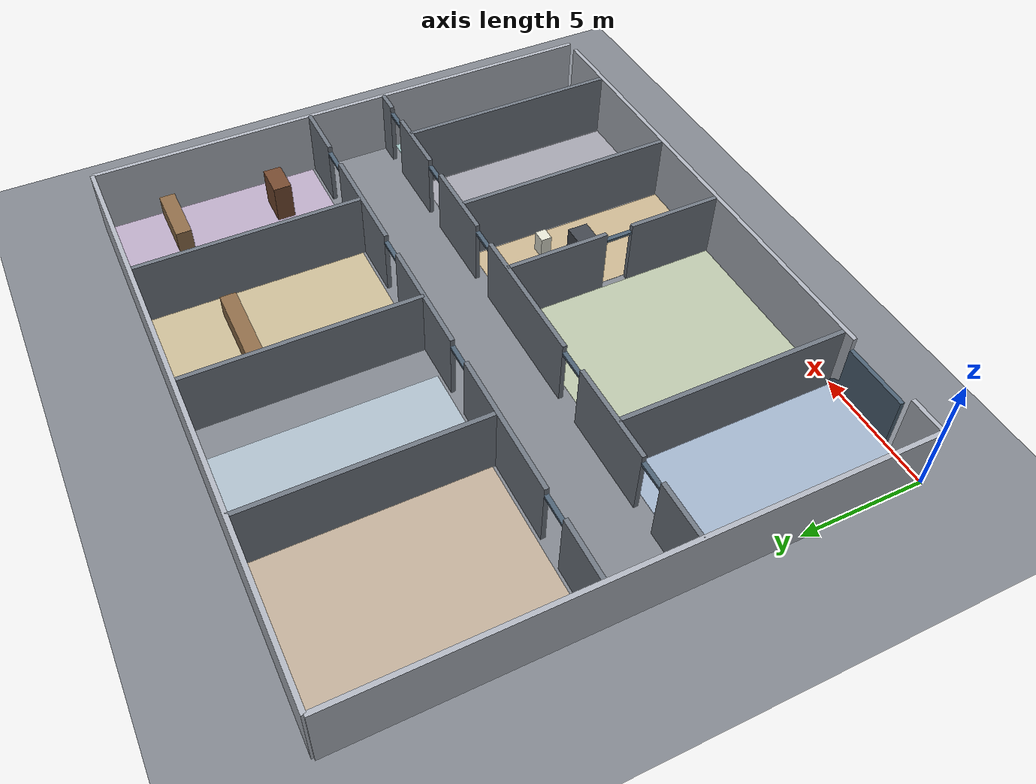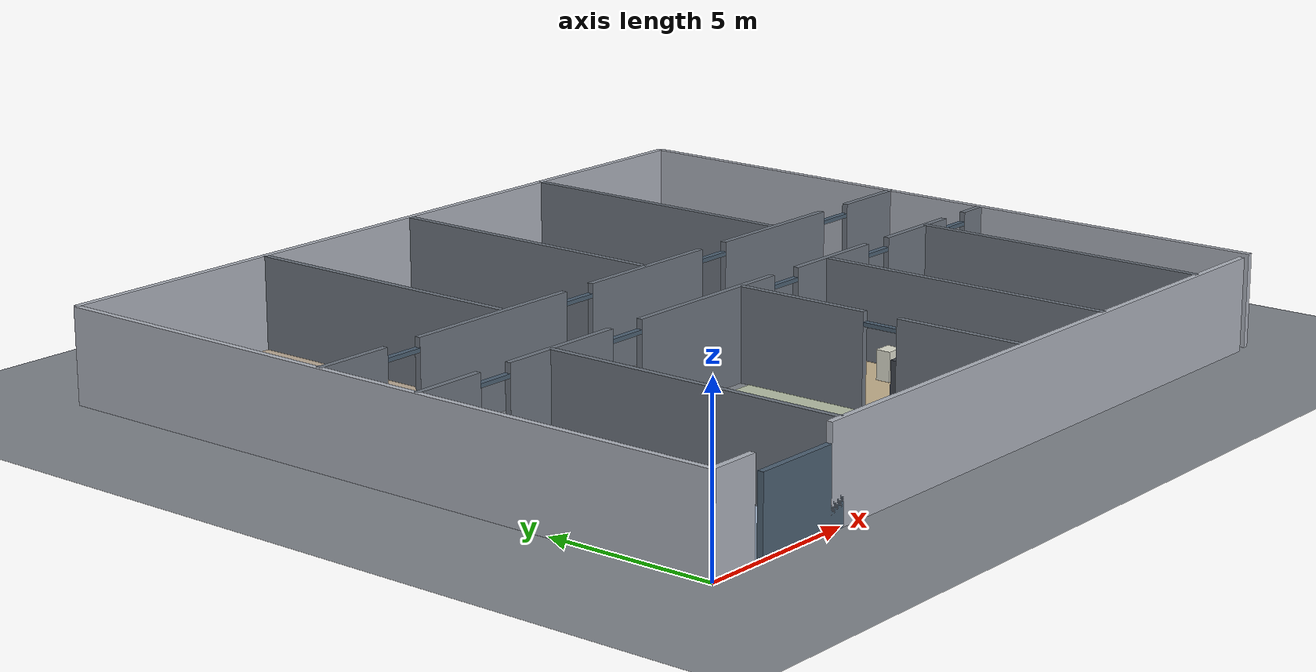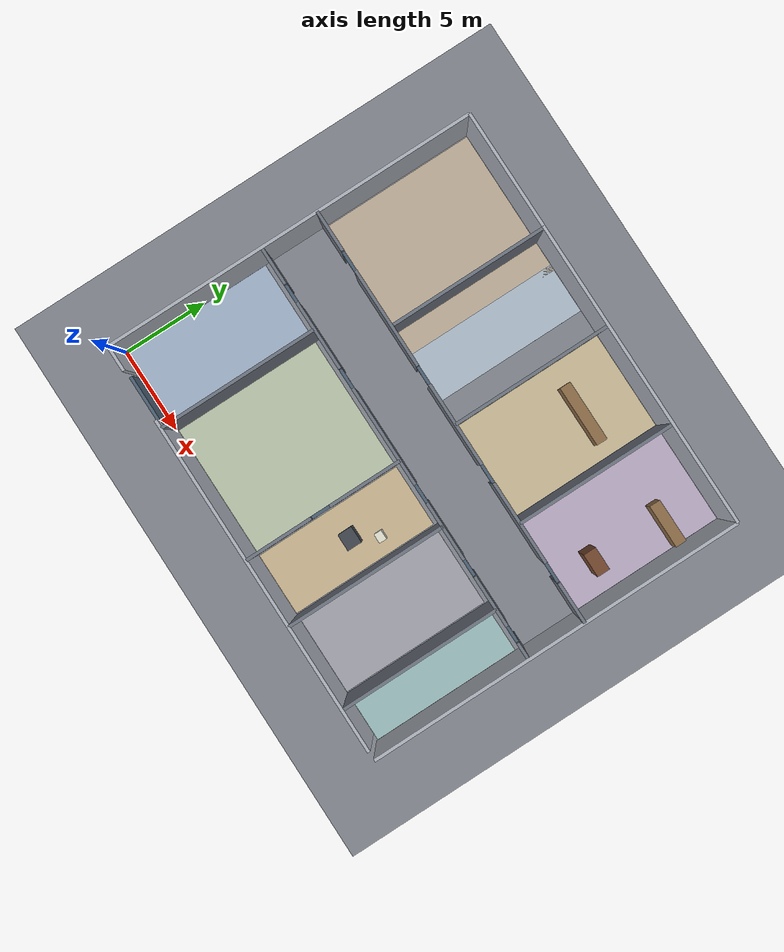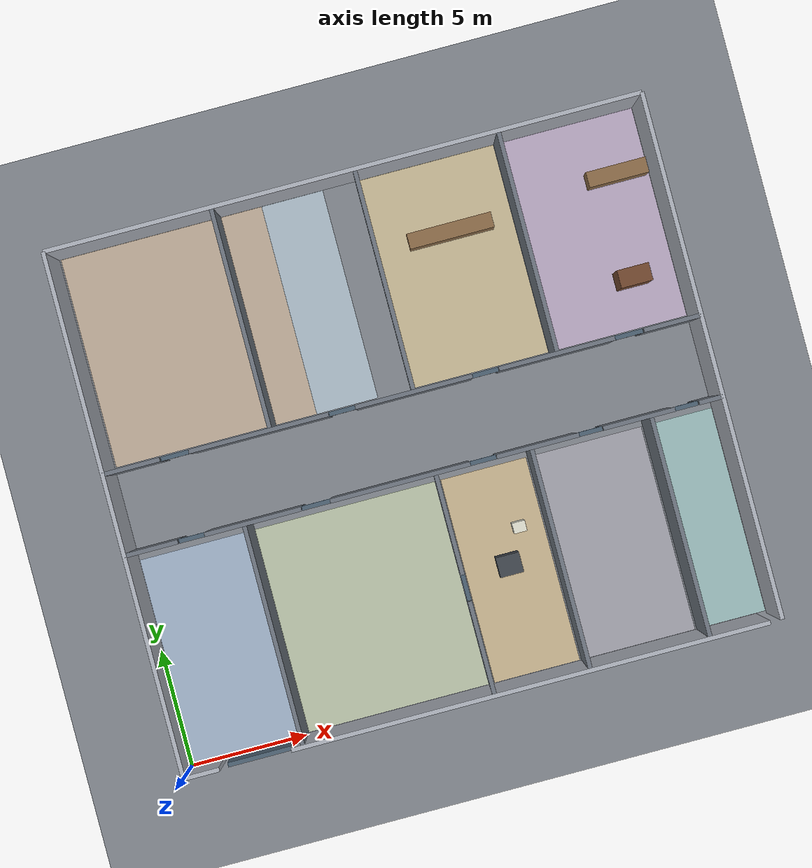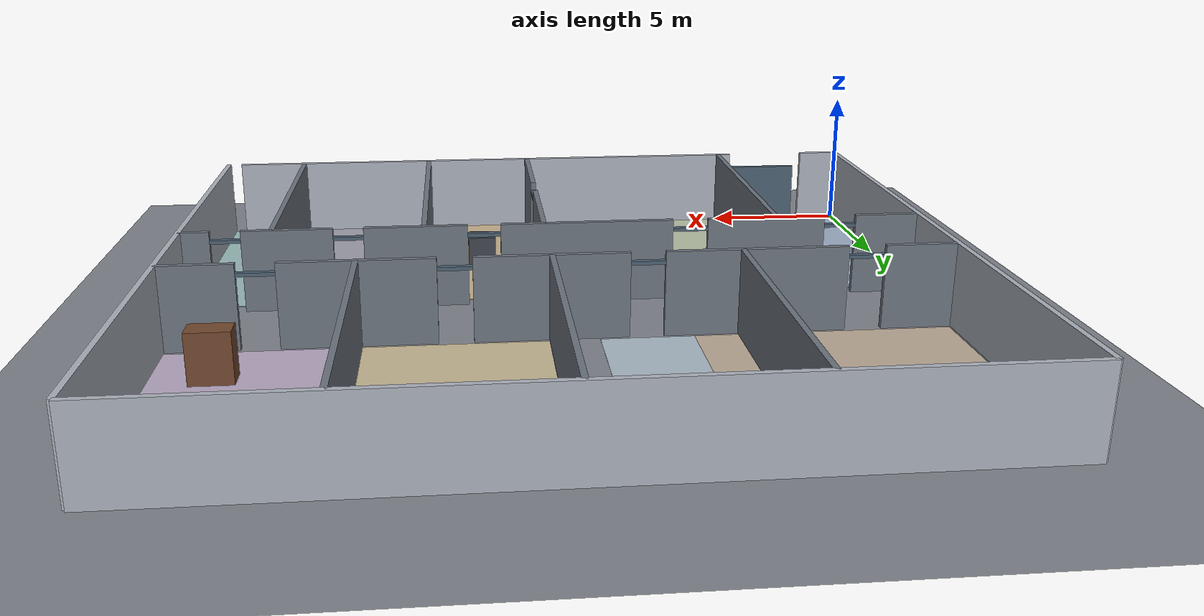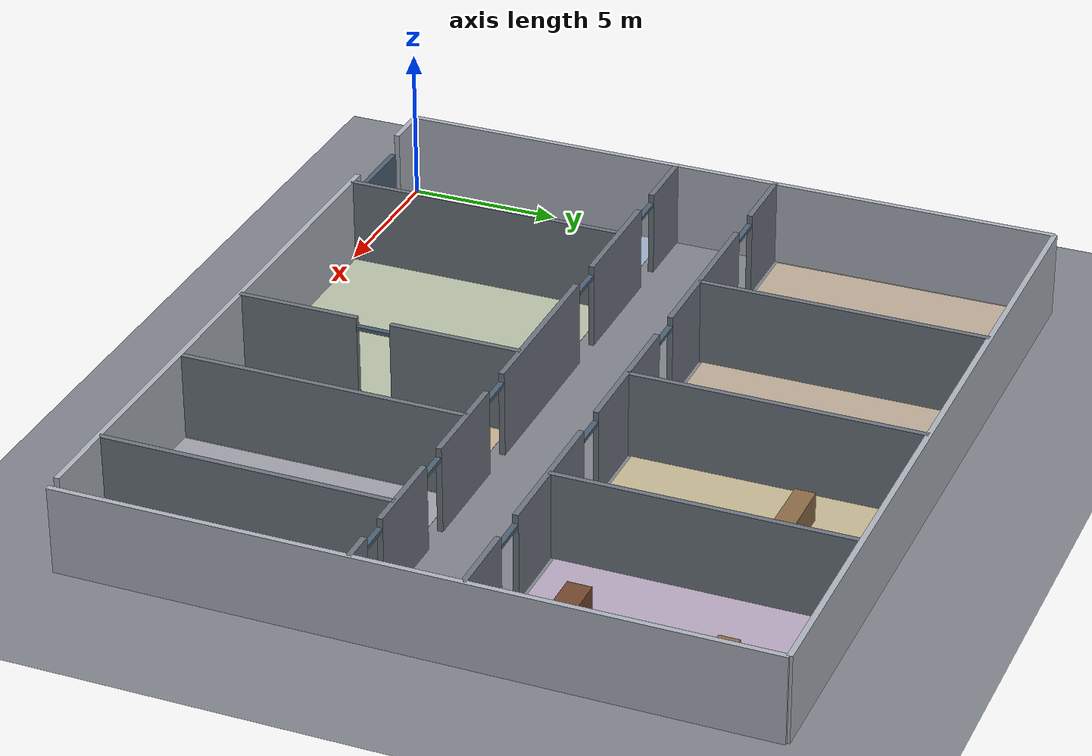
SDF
<sdf version="1.7">
 <world name="office_building_v1">
  <model name="ground_plane">
   <static>true</static>
   <link name="link">
    <collision name="collision">
     <geometry><plane><normal>0 0 1</normal><size>100 100</size></plane></geometry>
    </collision>
    <visual name="visual">
     <geometry><plane><normal>0 0 1</normal><size>100 100</size></plane></geometry>
     <material>
      <ambient>0.500 0.520 0.550 1.000</ambient>
      <diffuse>0.500 0.520 0.550 1.000</diffuse>
      <specular>0.15 0.15 0.15 1</specular>
     </material>
    </visual>
   </link>
  </model>
  <model name="office_building_structure">
   <static>true</static>
   <link name="floor_lobby">
    <pose>2.500 4.500 0.006 0 0 0.000000</pose>
    <visual name="floor_lobby_visual">
     <geometry><box><size>4.800 8.800 0.012</size></box></geometry>
     <material>
      <ambient>0.620 0.690 0.780 1.000</ambient>
      <diffuse>0.620 0.690 0.780 1.000</diffuse>
      <specular>0.15 0.15 0.15 1</specular>
     </material>
    </visual>
   </link>
   <link name="floor_open_office">
    <pose>9.000 4.500 0.006 0 0 0.000000</pose>
    <visual name="floor_open_office_visual">
     <geometry><box><size>7.800 8.800 0.012</size></box></geometry>
     <material>
      <ambient>0.720 0.760 0.660 1.000</ambient>
      <diffuse>0.720 0.760 0.660 1.000</diffuse>
      <specular>0.15 0.15 0.15 1</specular>
     </material>
    </visual>
   </link>
   <link name="floor_printer">
    <pose>15.000 4.500 0.006 0 0 0.000000</pose>
    <visual name="floor_printer_visual">
     <geometry><box><size>3.700 8.800 0.012</size></box></geometry>
     <material>
      <ambient>0.780 0.700 0.560 1.000</ambient>
      <diffuse>0.780 0.700 0.560 1.000</diffuse>
      <specular>0.15 0.15 0.15 1</specular>
     </material>
    </visual>
   </link>
   <link name="floor_storage">
    <pose>19.500 4.500 0.006 0 0 0.000000</pose>
    <visual name="floor_storage_visual">
     <geometry><box><size>4.700 8.800 0.012</size></box></geometry>
     <material>
      <ambient>0.630 0.630 0.670 1.000</ambient>
      <diffuse>0.630 0.630 0.670 1.000</diffuse>
      <specular>0.15 0.15 0.15 1</specular>
     </material>
    </visual>
   </link>
   <link name="floor_lounge">
    <pose>23.500 4.500 0.006 0 0 0.000000</pose>
    <visual name="floor_lounge_visual">
     <geometry><box><size>2.800 8.800 0.012</size></box></geometry>
     <material>
      <ambient>0.600 0.730 0.730 1.000</ambient>
      <diffuse>0.600 0.730 0.730 1.000</diffuse>
      <specular>0.15 0.15 0.15 1</specular>
     </material>
    </visual>
   </link>
   <link name="floor_conference">
    <pose>4.500 17.400 0.006 0 0 0.000000</pose>
    <visual name="floor_conference_visual">
     <geometry><box><size>8.700 9.000 0.012</size></box></geometry>
     <material>
      <ambient>0.740 0.670 0.590 1.000</ambient>
      <diffuse>0.740 0.670 0.590 1.000</diffuse>
      <specular>0.15 0.15 0.15 1</specular>
     </material>
    </visual>
   </link>
   <link name="floor_manager">
    <pose>10.000 17.400 0.006 0 0 0.000000</pose>
    <visual name="floor_manager_visual">
     <geometry><box><size>3.000 9.000 0.012</size></box></geometry>
     <material>
      <ambient>0.670 0.730 0.780 1.000</ambient>
      <diffuse>0.670 0.730 0.780 1.000</diffuse>
      <specular>0.15 0.15 0.15 1</specular>
     </material>
    </visual>
   </link>
   <link name="floor_kitchen">
    <pose>16.000 17.400 0.006 0 0 0.000000</pose>
    <visual name="floor_kitchen_visual">
     <geometry><box><size>5.800 9.000 0.012</size></box></geometry>
     <material>
      <ambient>0.780 0.720 0.580 1.000</ambient>
      <diffuse>0.780 0.720 0.580 1.000</diffuse>
      <specular>0.15 0.15 0.15 1</specular>
     </material>
    </visual>
   </link>
   <link name="floor_target_room">
    <pose>22.000 17.400 0.006 0 0 0.000000</pose>
    <visual name="floor_target_room_visual">
     <geometry><box><size>5.800 9.000 0.012</size></box></geometry>
     <material>
      <ambient>0.720 0.660 0.760 1.000</ambient>
      <diffuse>0.720 0.660 0.760 1.000</diffuse>
      <specular>0.15 0.15 0.15 1</specular>
     </material>
    </visual>
   </link>
   <link name="outer_west">
    <pose>0.000 11.000 1.400 0 0 0.000000</pose>
    <collision name="outer_west_collision">
     <geometry><box><size>0.180 22.000 2.800</size></box></geometry>
    </collision>
    <visual name="outer_west_visual">
     <geometry><box><size>0.180 22.000 2.800</size></box></geometry>
     <material>
      <ambient>0.680 0.700 0.740 1.000</ambient>
      <diffuse>0.680 0.700 0.740 1.000</diffuse>
      <specular>0.15 0.15 0.15 1</specular>
     </material>
    </visual>
   </link>
   <link name="outer_east">
    <pose>25.000 11.000 1.400 0 0 0.000000</pose>
    <collision name="outer_east_collision">
     <geometry><box><size>0.180 22.000 2.800</size></box></geometry>
    </collision>
    <visual name="outer_east_visual">
     <geometry><box><size>0.180 22.000 2.800</size></box></geometry>
     <material>
      <ambient>0.680 0.700 0.740 1.000</ambient>
      <diffuse>0.680 0.700 0.740 1.000</diffuse>
      <specular>0.15 0.15 0.15 1</specular>
     </material>
    </visual>
   </link>
   <link name="outer_north">
    <pose>12.500 22.000 1.400 0 0 0.000000</pose>
    <collision name="outer_north_collision">
     <geometry><box><size>25.000 0.180 2.800</size></box></geometry>
    </collision>
    <visual name="outer_north_visual">
     <geometry><box><size>25.000 0.180 2.800</size></box></geometry>
     <material>
      <ambient>0.680 0.700 0.740 1.000</ambient>
      <diffuse>0.680 0.700 0.740 1.000</diffuse>
      <specular>0.15 0.15 0.15 1</specular>
     </material>
    </visual>
   </link>
   <link name="outer_south_west">
    <pose>0.750 0.000 1.400 0 0 0.000000</pose>
    <collision name="outer_south_west_collision">
     <geometry><box><size>1.500 0.180 2.800</size></box></geometry>
    </collision>
    <visual name="outer_south_west_visual">
     <geometry><box><size>1.500 0.180 2.800</size></box></geometry>
     <material>
      <ambient>0.680 0.700 0.740 1.000</ambient>
      <diffuse>0.680 0.700 0.740 1.000</diffuse>
      <specular>0.15 0.15 0.15 1</specular>
     </material>
    </visual>
   </link>
   <link name="outer_south_east">
    <pose>14.500 0.000 1.400 0 0 0.000000</pose>
    <collision name="outer_south_east_collision">
     <geometry><box><size>20.000 0.180 2.800</size></box></geometry>
    </collision>
    <visual name="outer_south_east_visual">
     <geometry><box><size>20.000 0.180 2.800</size></box></geometry>
     <material>
      <ambient>0.680 0.700 0.740 1.000</ambient>
      <diffuse>0.680 0.700 0.740 1.000</diffuse>
      <specular>0.15 0.15 0.15 1</specular>
     </material>
    </visual>
   </link>
   <link name="south_entry_closed_door">
    <pose>3.400 0.000 1.125 0 0 0.000000</pose>
    <collision name="south_entry_closed_door_collision">
     <geometry><box><size>3.200 0.180 2.250</size></box></geometry>
    </collision>
    <visual name="south_entry_closed_door_visual">
     <geometry><box><size>3.200 0.180 2.250</size></box></geometry>
     <material>
      <ambient>0.300 0.380 0.450 1.000</ambient>
      <diffuse>0.300 0.380 0.450 1.000</diffuse>
      <specular>0.15 0.15 0.15 1</specular>
     </material>
    </visual>
   </link>
   <link name="lower_corridor_wall_segment_0">
    <pose>1.125 9.300 1.400 0 0 0.000000</pose>
    <collision name="lower_corridor_wall_segment_0_collision">
     <geometry><box><size>2.250 0.180 2.800</size></box></geometry>
    </collision>
    <visual name="lower_corridor_wall_segment_0_visual">
     <geometry><box><size>2.250 0.180 2.800</size></box></geometry>
     <material>
      <ambient>0.430 0.460 0.500 1.000</ambient>
      <diffuse>0.430 0.460 0.500 1.000</diffuse>
      <specular>0.15 0.15 0.15 1</specular>
     </material>
    </visual>
   </link>
   <link name="lower_corridor_wall_segment_1">
    <pose>5.375 9.300 1.400 0 0 0.000000</pose>
    <collision name="lower_corridor_wall_segment_1_collision">
     <geometry><box><size>4.050 0.180 2.800</size></box></geometry>
    </collision>
    <visual name="lower_corridor_wall_segment_1_visual">
     <geometry><box><size>4.050 0.180 2.800</size></box></geometry>
     <material>
      <ambient>0.430 0.460 0.500 1.000</ambient>
      <diffuse>0.430 0.460 0.500 1.000</diffuse>
      <specular>0.15 0.15 0.15 1</specular>
     </material>
    </visual>
   </link>
   <link name="lower_corridor_wall_segment_2">
    <pose>11.525 9.300 1.400 0 0 0.000000</pose>
    <collision name="lower_corridor_wall_segment_2_collision">
     <geometry><box><size>5.850 0.180 2.800</size></box></geometry>
    </collision>
    <visual name="lower_corridor_wall_segment_2_visual">
     <geometry><box><size>5.850 0.180 2.800</size></box></geometry>
     <material>
      <ambient>0.430 0.460 0.500 1.000</ambient>
      <diffuse>0.430 0.460 0.500 1.000</diffuse>
      <specular>0.15 0.15 0.15 1</specular>
     </material>
    </visual>
   </link>
   <link name="lower_corridor_wall_segment_3">
    <pose>17.275 9.300 1.400 0 0 0.000000</pose>
    <collision name="lower_corridor_wall_segment_3_collision">
     <geometry><box><size>3.450 0.180 2.800</size></box></geometry>
    </collision>
    <visual name="lower_corridor_wall_segment_3_visual">
     <geometry><box><size>3.450 0.180 2.800</size></box></geometry>
     <material>
      <ambient>0.430 0.460 0.500 1.000</ambient>
      <diffuse>0.430 0.460 0.500 1.000</diffuse>
      <specular>0.15 0.15 0.15 1</specular>
     </material>
    </visual>
   </link>
   <link name="lower_corridor_wall_segment_4">
    <pose>21.500 9.300 1.400 0 0 0.000000</pose>
    <collision name="lower_corridor_wall_segment_4_collision">
     <geometry><box><size>3.000 0.180 2.800</size></box></geometry>
    </collision>
    <visual name="lower_corridor_wall_segment_4_visual">
     <geometry><box><size>3.000 0.180 2.800</size></box></geometry>
     <material>
      <ambient>0.430 0.460 0.500 1.000</ambient>
      <diffuse>0.430 0.460 0.500 1.000</diffuse>
      <specular>0.15 0.15 0.15 1</specular>
     </material>
    </visual>
   </link>
   <link name="lower_corridor_wall_segment_final">
    <pose>24.500 9.300 1.400 0 0 0.000000</pose>
    <collision name="lower_corridor_wall_segment_final_collision">
     <geometry><box><size>1.000 0.180 2.800</size></box></geometry>
    </collision>
    <visual name="lower_corridor_wall_segment_final_visual">
     <geometry><box><size>1.000 0.180 2.800</size></box></geometry>
     <material>
      <ambient>0.430 0.460 0.500 1.000</ambient>
      <diffuse>0.430 0.460 0.500 1.000</diffuse>
      <specular>0.15 0.15 0.15 1</specular>
     </material>
    </visual>
   </link>
   <link name="upper_corridor_wall_segment_0">
    <pose>1.200 12.700 1.400 0 0 0.000000</pose>
    <collision name="upper_corridor_wall_segment_0_collision">
     <geometry><box><size>2.400 0.180 2.800</size></box></geometry>
    </collision>
    <visual name="upper_corridor_wall_segment_0_visual">
     <geometry><box><size>2.400 0.180 2.800</size></box></geometry>
     <material>
      <ambient>0.430 0.460 0.500 1.000</ambient>
      <diffuse>0.430 0.460 0.500 1.000</diffuse>
      <specular>0.15 0.15 0.15 1</specular>
     </material>
    </visual>
   </link>
   <link name="upper_corridor_wall_segment_1">
    <pose>6.525 12.700 1.400 0 0 0.000000</pose>
    <collision name="upper_corridor_wall_segment_1_collision">
     <geometry><box><size>5.850 0.180 2.800</size></box></geometry>
    </collision>
    <visual name="upper_corridor_wall_segment_1_visual">
     <geometry><box><size>5.850 0.180 2.800</size></box></geometry>
     <material>
      <ambient>0.430 0.460 0.500 1.000</ambient>
      <diffuse>0.430 0.460 0.500 1.000</diffuse>
      <specular>0.15 0.15 0.15 1</specular>
     </material>
    </visual>
   </link>
   <link name="upper_corridor_wall_segment_2">
    <pose>13.000 12.700 1.400 0 0 0.000000</pose>
    <collision name="upper_corridor_wall_segment_2_collision">
     <geometry><box><size>4.900 0.180 2.800</size></box></geometry>
    </collision>
    <visual name="upper_corridor_wall_segment_2_visual">
     <geometry><box><size>4.900 0.180 2.800</size></box></geometry>
     <material>
      <ambient>0.430 0.460 0.500 1.000</ambient>
      <diffuse>0.430 0.460 0.500 1.000</diffuse>
      <specular>0.15 0.15 0.15 1</specular>
     </material>
    </visual>
   </link>
   <link name="upper_corridor_wall_segment_3">
    <pose>18.975 12.700 1.400 0 0 0.000000</pose>
    <collision name="upper_corridor_wall_segment_3_collision">
     <geometry><box><size>4.850 0.180 2.800</size></box></geometry>
    </collision>
    <visual name="upper_corridor_wall_segment_3_visual">
     <geometry><box><size>4.850 0.180 2.800</size></box></geometry>
     <material>
      <ambient>0.430 0.460 0.500 1.000</ambient>
      <diffuse>0.430 0.460 0.500 1.000</diffuse>
      <specular>0.15 0.15 0.15 1</specular>
     </material>
    </visual>
   </link>
   <link name="upper_corridor_wall_segment_final">
    <pose>23.800 12.700 1.400 0 0 0.000000</pose>
    <collision name="upper_corridor_wall_segment_final_collision">
     <geometry><box><size>2.400 0.180 2.800</size></box></geometry>
    </collision>
    <visual name="upper_corridor_wall_segment_final_visual">
     <geometry><box><size>2.400 0.180 2.800</size></box></geometry>
     <material>
      <ambient>0.430 0.460 0.500 1.000</ambient>
      <diffuse>0.430 0.460 0.500 1.000</diffuse>
      <specular>0.15 0.15 0.15 1</specular>
     </material>
    </visual>
   </link>
   <link name="lobby_office_wall_segment_final">
    <pose>5.000 4.650 1.400 0 0 0.000000</pose>
    <collision name="lobby_office_wall_segment_final_collision">
     <geometry><box><size>0.180 9.300 2.800</size></box></geometry>
    </collision>
    <visual name="lobby_office_wall_segment_final_visual">
     <geometry><box><size>0.180 9.300 2.800</size></box></geometry>
     <material>
      <ambient>0.430 0.460 0.500 1.000</ambient>
      <diffuse>0.430 0.460 0.500 1.000</diffuse>
      <specular>0.15 0.15 0.15 1</specular>
     </material>
    </visual>
   </link>
   <link name="office_printer_wall_segment_0">
    <pose>13.000 1.975 1.400 0 0 0.000000</pose>
    <collision name="office_printer_wall_segment_0_collision">
     <geometry><box><size>0.180 3.950 2.800</size></box></geometry>
    </collision>
    <visual name="office_printer_wall_segment_0_visual">
     <geometry><box><size>0.180 3.950 2.800</size></box></geometry>
     <material>
      <ambient>0.430 0.460 0.500 1.000</ambient>
      <diffuse>0.430 0.460 0.500 1.000</diffuse>
      <specular>0.15 0.15 0.15 1</specular>
     </material>
    </visual>
   </link>
   <link name="office_printer_wall_segment_final">
    <pose>13.000 7.175 1.400 0 0 0.000000</pose>
    <collision name="office_printer_wall_segment_final_collision">
     <geometry><box><size>0.180 4.250 2.800</size></box></geometry>
    </collision>
    <visual name="office_printer_wall_segment_final_visual">
     <geometry><box><size>0.180 4.250 2.800</size></box></geometry>
     <material>
      <ambient>0.430 0.460 0.500 1.000</ambient>
      <diffuse>0.430 0.460 0.500 1.000</diffuse>
      <specular>0.15 0.15 0.15 1</specular>
     </material>
    </visual>
   </link>
   <link name="printer_storage_wall_segment_final">
    <pose>17.000 4.650 1.400 0 0 0.000000</pose>
    <collision name="printer_storage_wall_segment_final_collision">
     <geometry><box><size>0.180 9.300 2.800</size></box></geometry>
    </collision>
    <visual name="printer_storage_wall_segment_final_visual">
     <geometry><box><size>0.180 9.300 2.800</size></box></geometry>
     <material>
      <ambient>0.430 0.460 0.500 1.000</ambient>
      <diffuse>0.430 0.460 0.500 1.000</diffuse>
      <specular>0.15 0.15 0.15 1</specular>
     </material>
    </visual>
   </link>
   <link name="storage_lounge_wall_segment_final">
    <pose>22.000 4.650 1.400 0 0 0.000000</pose>
    <collision name="storage_lounge_wall_segment_final_collision">
     <geometry><box><size>0.180 9.300 2.800</size></box></geometry>
    </collision>
    <visual name="storage_lounge_wall_segment_final_visual">
     <geometry><box><size>0.180 9.300 2.800</size></box></geometry>
     <material>
      <ambient>0.430 0.460 0.500 1.000</ambient>
      <diffuse>0.430 0.460 0.500 1.000</diffuse>
      <specular>0.15 0.15 0.15 1</specular>
     </material>
    </visual>
   </link>
   <link name="conference_manager_wall_segment_final">
    <pose>7.000 17.350 1.400 0 0 0.000000</pose>
    <collision name="conference_manager_wall_segment_final_collision">
     <geometry><box><size>0.180 9.300 2.800</size></box></geometry>
    </collision>
    <visual name="conference_manager_wall_segment_final_visual">
     <geometry><box><size>0.180 9.300 2.800</size></box></geometry>
     <material>
      <ambient>0.430 0.460 0.500 1.000</ambient>
      <diffuse>0.430 0.460 0.500 1.000</diffuse>
      <specular>0.15 0.15 0.15 1</specular>
     </material>
    </visual>
   </link>
   <link name="manager_kitchen_wall_segment_final">
    <pose>13.000 17.350 1.400 0 0 0.000000</pose>
    <collision name="manager_kitchen_wall_segment_final_collision">
     <geometry><box><size>0.180 9.300 2.800</size></box></geometry>
    </collision>
    <visual name="manager_kitchen_wall_segment_final_visual">
     <geometry><box><size>0.180 9.300 2.800</size></box></geometry>
     <material>
      <ambient>0.430 0.460 0.500 1.000</ambient>
      <diffuse>0.430 0.460 0.500 1.000</diffuse>
      <specular>0.15 0.15 0.15 1</specular>
     </material>
    </visual>
   </link>
   <link name="kitchen_target_wall_segment_final">
    <pose>19.000 17.350 1.400 0 0 0.000000</pose>
    <collision name="kitchen_target_wall_segment_final_collision">
     <geometry><box><size>0.180 9.300 2.800</size></box></geometry>
    </collision>
    <visual name="kitchen_target_wall_segment_final_visual">
     <geometry><box><size>0.180 9.300 2.800</size></box></geometry>
     <material>
      <ambient>0.430 0.460 0.500 1.000</ambient>
      <diffuse>0.430 0.460 0.500 1.000</diffuse>
      <specular>0.15 0.15 0.15 1</specular>
     </material>
    </visual>
   </link>
   <link name="lobby_corridor_lintel">
    <pose>2.800 9.300 2.450 0 0 0.000000</pose>
    <visual name="lobby_corridor_lintel_visual">
     <geometry><box><size>1.100 0.180 0.120</size></box></geometry>
     <material>
      <ambient>0.300 0.380 0.450 1.000</ambient>
      <diffuse>0.300 0.380 0.450 1.000</diffuse>
      <specular>0.15 0.15 0.15 1</specular>
     </material>
    </visual>
   </link>
   <link name="open_office_corridor_lintel">
    <pose>8.000 9.300 2.450 0 0 0.000000</pose>
    <visual name="open_office_corridor_lintel_visual">
     <geometry><box><size>1.200 0.180 0.120</size></box></geometry>
     <material>
      <ambient>0.300 0.380 0.450 1.000</ambient>
      <diffuse>0.300 0.380 0.450 1.000</diffuse>
      <specular>0.15 0.15 0.15 1</specular>
     </material>
    </visual>
   </link>
   <link name="printer_corridor_lintel">
    <pose>15.000 9.300 2.450 0 0 0.000000</pose>
    <visual name="printer_corridor_lintel_visual">
     <geometry><box><size>1.100 0.180 0.120</size></box></geometry>
     <material>
      <ambient>0.300 0.380 0.450 1.000</ambient>
      <diffuse>0.300 0.380 0.450 1.000</diffuse>
      <specular>0.15 0.15 0.15 1</specular>
     </material>
    </visual>
   </link>
   <link name="storage_corridor_lintel">
    <pose>19.500 9.300 2.450 0 0 0.000000</pose>
    <visual name="storage_corridor_lintel_visual">
     <geometry><box><size>1.000 0.180 0.120</size></box></geometry>
     <material>
      <ambient>0.300 0.380 0.450 1.000</ambient>
      <diffuse>0.300 0.380 0.450 1.000</diffuse>
      <specular>0.15 0.15 0.15 1</specular>
     </material>
    </visual>
   </link>
   <link name="lounge_corridor_lintel">
    <pose>23.500 9.300 2.450 0 0 0.000000</pose>
    <visual name="lounge_corridor_lintel_visual">
     <geometry><box><size>1.000 0.180 0.120</size></box></geometry>
     <material>
      <ambient>0.300 0.380 0.450 1.000</ambient>
      <diffuse>0.300 0.380 0.450 1.000</diffuse>
      <specular>0.15 0.15 0.15 1</specular>
     </material>
    </visual>
   </link>
   <link name="conference_corridor_lintel">
    <pose>3.000 12.700 2.450 0 0 0.000000</pose>
    <visual name="conference_corridor_lintel_visual">
     <geometry><box><size>1.200 0.180 0.120</size></box></geometry>
     <material>
      <ambient>0.300 0.380 0.450 1.000</ambient>
      <diffuse>0.300 0.380 0.450 1.000</diffuse>
      <specular>0.15 0.15 0.15 1</specular>
     </material>
    </visual>
   </link>
   <link name="manager_corridor_lintel">
    <pose>10.000 12.700 2.450 0 0 0.000000</pose>
    <visual name="manager_corridor_lintel_visual">
     <geometry><box><size>1.100 0.180 0.120</size></box></geometry>
     <material>
      <ambient>0.300 0.380 0.450 1.000</ambient>
      <diffuse>0.300 0.380 0.450 1.000</diffuse>
      <specular>0.15 0.15 0.15 1</specular>
     </material>
    </visual>
   </link>
   <link name="kitchen_corridor_lintel">
    <pose>16.000 12.700 2.450 0 0 0.000000</pose>
    <visual name="kitchen_corridor_lintel_visual">
     <geometry><box><size>1.100 0.180 0.120</size></box></geometry>
     <material>
      <ambient>0.300 0.380 0.450 1.000</ambient>
      <diffuse>0.300 0.380 0.450 1.000</diffuse>
      <specular>0.15 0.15 0.15 1</specular>
     </material>
    </visual>
   </link>
   <link name="target_room_corridor_lintel">
    <pose>22.000 12.700 2.450 0 0 0.000000</pose>
    <visual name="target_room_corridor_lintel_visual">
     <geometry><box><size>1.200 0.180 0.120</size></box></geometry>
     <material>
      <ambient>0.300 0.380 0.450 1.000</ambient>
      <diffuse>0.300 0.380 0.450 1.000</diffuse>
      <specular>0.15 0.15 0.15 1</specular>
     </material>
    </visual>
   </link>
   <link name="office_printer_staff_door_lintel">
    <pose>13.000 4.500 2.450 0 0 0.000000</pose>
    <visual name="office_printer_staff_door_lintel_visual">
     <geometry><box><size>0.180 1.100 0.120</size></box></geometry>
     <material>
      <ambient>0.300 0.380 0.450 1.000</ambient>
      <diffuse>0.300 0.380 0.450 1.000</diffuse>
      <specular>0.15 0.15 0.15 1</specular>
     </material>
    </visual>
   </link>
   <link name="printer_body">
    <pose>15.000 4.800 0.525 0 0 0.000000</pose>
    <collision name="printer_body_collision">
     <geometry><box><size>1.000 0.850 1.050</size></box></geometry>
    </collision>
    <visual name="printer_body_visual">
     <geometry><box><size>1.000 0.850 1.050</size></box></geometry>
     <material>
      <ambient>0.250 0.270 0.300 1.000</ambient>
      <diffuse>0.250 0.270 0.300 1.000</diffuse>
      <specular>0.15 0.15 0.15 1</specular>
     </material>
    </visual>
   </link>
   <link name="printer_paper_stack">
    <pose>15.800 6.200 0.450 0 0 0.000000</pose>
    <collision name="printer_paper_stack_collision">
     <geometry><box><size>0.550 0.450 0.900</size></box></geometry>
    </collision>
    <visual name="printer_paper_stack_visual">
     <geometry><box><size>0.550 0.450 0.900</size></box></geometry>
     <material>
      <ambient>0.880 0.880 0.820 1.000</ambient>
      <diffuse>0.880 0.880 0.820 1.000</diffuse>
      <specular>0.15 0.15 0.15 1</specular>
     </material>
    </visual>
   </link>
   <link name="kitchen_counter">
    <pose>16.200 18.800 0.475 0 0 0.000000</pose>
    <collision name="kitchen_counter_collision">
     <geometry><box><size>3.600 0.650 0.950</size></box></geometry>
    </collision>
    <visual name="kitchen_counter_visual">
     <geometry><box><size>3.600 0.650 0.950</size></box></geometry>
     <material>
      <ambient>0.550 0.420 0.280 1.000</ambient>
      <diffuse>0.550 0.420 0.280 1.000</diffuse>
      <specular>0.15 0.15 0.15 1</specular>
     </material>
    </visual>
   </link>
   <link name="target_room_refreshment_counter">
    <pose>23.500 19.350 0.475 0 0 0.000000</pose>
    <collision name="target_room_refreshment_counter_collision">
     <geometry><box><size>2.550 0.650 0.950</size></box></geometry>
    </collision>
    <visual name="target_room_refreshment_counter_visual">
     <geometry><box><size>2.550 0.650 0.950</size></box></geometry>
     <material>
      <ambient>0.550 0.420 0.280 1.000</ambient>
      <diffuse>0.550 0.420 0.280 1.000</diffuse>
      <specular>0.15 0.15 0.15 1</specular>
     </material>
    </visual>
   </link>
   <link name="target_room_occluder">
    <pose>23.000 15.000 0.825 0 0 0.000000</pose>
    <collision name="target_room_occluder_collision">
     <geometry><box><size>1.350 0.750 1.650</size></box></geometry>
    </collision>
    <visual name="target_room_occluder_visual">
     <geometry><box><size>1.350 0.750 1.650</size></box></geometry>
     <material>
      <ambient>0.450 0.280 0.180 1.000</ambient>
      <diffuse>0.450 0.280 0.180 1.000</diffuse>
      <specular>0.15 0.15 0.15 1</specular>
     </material>
    </visual>
   </link>
  </model>
 </world>
</sdf>
